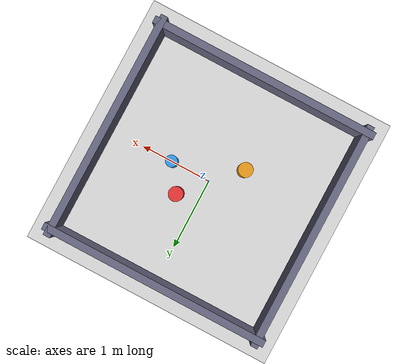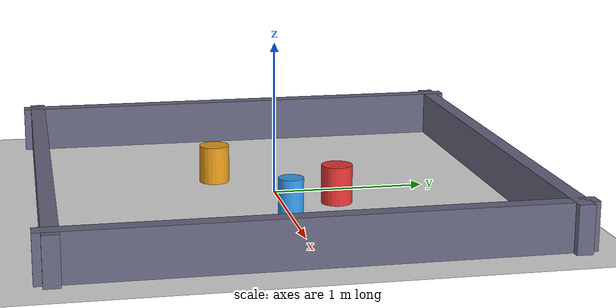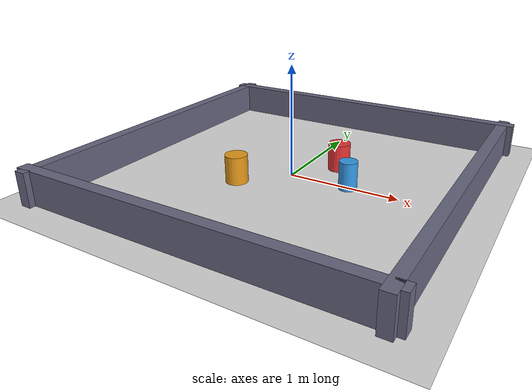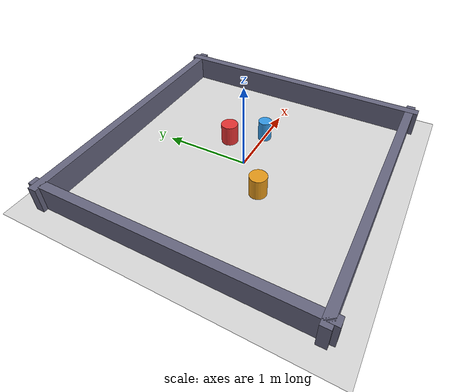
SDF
<?xml version="1.0" ?>
<!--
  Obstacle World for Hybrid LQR-MPC Navigation
  Figure-8: x=0.5*sin(0.2t), y=0.25*sin(0.4t)
  3m x 3m boundary arena, obstacles NEAR but not ON the path
-->
<sdf version="1.8">
  <world name="hybrid_obstacle_world">

    <physics name="1ms" type="ignored">
      <max_step_size>0.001</max_step_size>
      <real_time_factor>1.0</real_time_factor>
    </physics>

    <plugin filename="libgz-sim-physics-system.so"
            name="gz::sim::systems::Physics"/>
    <plugin filename="libgz-sim-user-commands-system.so"
            name="gz::sim::systems::UserCommands"/>
    <plugin filename="libgz-sim-scene-broadcaster-system.so"
            name="gz::sim::systems::SceneBroadcaster"/>

    <light type="directional" name="sun">
      <cast_shadows>true</cast_shadows>
      <pose>0 0 10 0 0 0</pose>
      <diffuse>0.9 0.9 0.9 1</diffuse>
      <specular>0.3 0.3 0.3 1</specular>
      <direction>-0.5 0.1 -0.9</direction>
    </light>

    <!-- Ground Plane -->
    <model name="ground_plane">
      <static>true</static>
      <link name="link">
        <collision name="collision">
          <geometry><plane><normal>0 0 1</normal><size>10 10</size></plane></geometry>
        </collision>
        <visual name="visual">
          <geometry><plane><normal>0 0 1</normal><size>10 10</size></plane></geometry>
          <material>
            <ambient>0.85 0.85 0.85 1</ambient>
            <diffuse>0.85 0.85 0.85 1</diffuse>
          </material>
        </visual>
      </link>
    </model>

    <!-- ══════ BOUNDARY WALLS (3m × 3m) ══════ -->
    <model name="wall_north">
      <static>true</static>
      <pose>0 1.5 0.15 0 0 0</pose>
      <link name="link">
        <collision name="c"><geometry><box><size>3.2 0.1 0.3</size></box></geometry></collision>
        <visual name="v">
          <geometry><box><size>3.2 0.1 0.3</size></box></geometry>
          <material><ambient>0.4 0.4 0.5 1</ambient><diffuse>0.4 0.4 0.5 1</diffuse></material>
        </visual>
      </link>
    </model>
    <model name="wall_south">
      <static>true</static>
      <pose>0 -1.5 0.15 0 0 0</pose>
      <link name="link">
        <collision name="c"><geometry><box><size>3.2 0.1 0.3</size></box></geometry></collision>
        <visual name="v">
          <geometry><box><size>3.2 0.1 0.3</size></box></geometry>
          <material><ambient>0.4 0.4 0.5 1</ambient><diffuse>0.4 0.4 0.5 1</diffuse></material>
        </visual>
      </link>
    </model>
    <model name="wall_east">
      <static>true</static>
      <pose>1.5 0 0.15 0 0 0</pose>
      <link name="link">
        <collision name="c"><geometry><box><size>0.1 3.2 0.3</size></box></geometry></collision>
        <visual name="v">
          <geometry><box><size>0.1 3.2 0.3</size></box></geometry>
          <material><ambient>0.4 0.4 0.5 1</ambient><diffuse>0.4 0.4 0.5 1</diffuse></material>
        </visual>
      </link>
    </model>
    <model name="wall_west">
      <static>true</static>
      <pose>-1.5 0 0.15 0 0 0</pose>
      <link name="link">
        <collision name="c"><geometry><box><size>0.1 3.2 0.3</size></box></geometry></collision>
        <visual name="v">
          <geometry><box><size>0.1 3.2 0.3</size></box></geometry>
          <material><ambient>0.4 0.4 0.5 1</ambient><diffuse>0.4 0.4 0.5 1</diffuse></material>
        </visual>
      </link>
    </model>

    <!-- ══════ OBSTACLES (near but NOT on the figure-8) ══════ -->

    <!-- Obstacle 1: Above right loop (red) -->
    <model name="obstacle_1">
      <static>true</static>
      <pose>0.30 0.35 0.125 0 0 0</pose>
      <link name="link">
        <collision name="c"><geometry><cylinder><radius>0.10</radius><length>0.25</length></cylinder></geometry></collision>
        <visual name="v">
          <geometry><cylinder><radius>0.10</radius><length>0.25</length></cylinder></geometry>
          <material><ambient>0.9 0.2 0.2 1</ambient><diffuse>0.9 0.2 0.2 1</diffuse></material>
        </visual>
      </link>
    </model>

    <!-- Obstacle 2: Below left loop (orange) -->
    <model name="obstacle_2">
      <static>true</static>
      <pose>-0.35 -0.35 0.125 0 0 0</pose>
      <link name="link">
        <collision name="c"><geometry><cylinder><radius>0.10</radius><length>0.25</length></cylinder></geometry></collision>
        <visual name="v">
          <geometry><cylinder><radius>0.10</radius><length>0.25</length></cylinder></geometry>
          <material><ambient>0.9 0.6 0.1 1</ambient><diffuse>0.9 0.6 0.1 1</diffuse></material>
        </visual>
      </link>
    </model>

    <!-- Obstacle 3: Right of crossing (blue) -->
    <model name="obstacle_3">
      <static>true</static>
      <pose>0.55 0.00 0.125 0 0 0</pose>
      <link name="link">
        <collision name="c"><geometry><cylinder><radius>0.08</radius><length>0.25</length></cylinder></geometry></collision>
        <visual name="v">
          <geometry><cylinder><radius>0.08</radius><length>0.25</length></cylinder></geometry>
          <material><ambient>0.2 0.6 0.9 1</ambient><diffuse>0.2 0.6 0.9 1</diffuse></material>
        </visual>
      </link>
    </model>

  </world>
</sdf>
